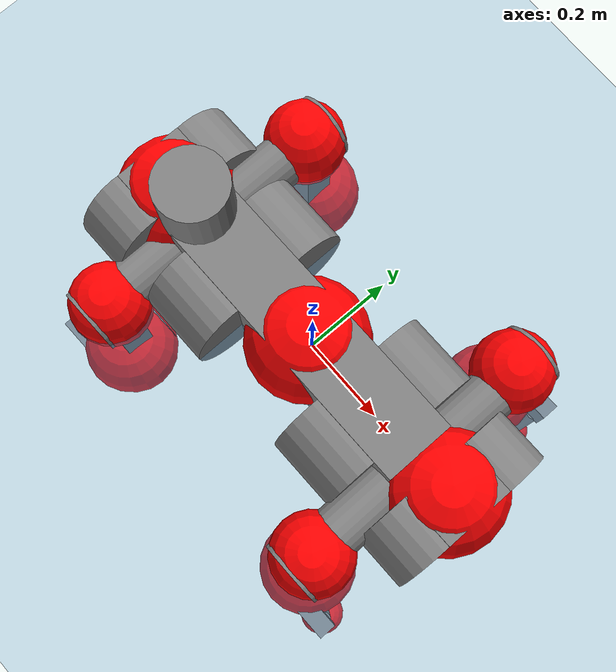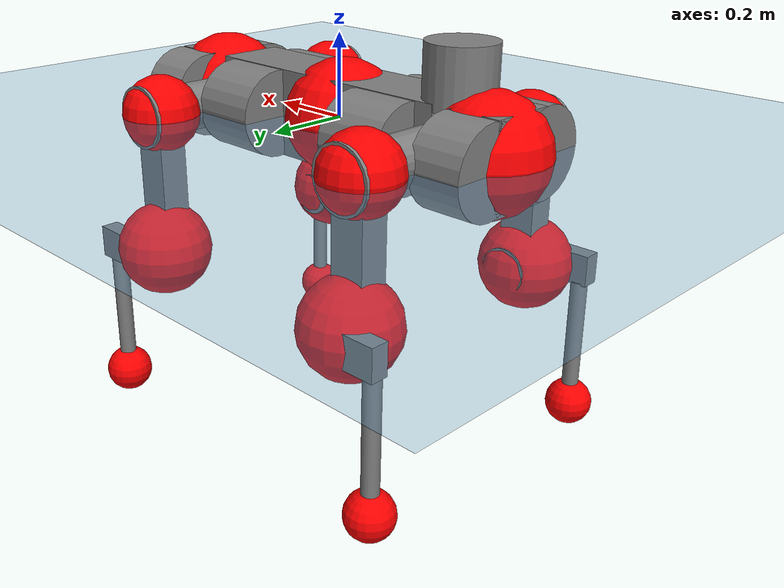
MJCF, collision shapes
<mujoco model="anymal_c">
  <compiler angle="radian" assetdir="assets" balanceinertia="true" inertiafromgeom="false"/>

  <option timestep="0.005" density="1.2" viscosity="2e-05"/>

  <size nkey="1"/>

  <visual>
    <quality shadowsize="8192"/>
    <map shadowclip="0.5"/>
  </visual>

  <default>
    <default class="/">
      <material specular="0" shininess="0.25"/>
      <geom contype="0" conaffinity="0" group="1" solref="-1000 -80"/>
      <site size="0.01 0.005 0.005" group="5"/>
      <general forcelimited="true" forcerange="-80 80" biastype="affine" gainprm="80" biasprm="0 -80 -2"/>
      <default class="anymal_c">
        <joint armature="0.01" damping="0.01" frictionloss="0.1"/>
        <default class="visual">
          <geom type="mesh" group="2"/>
          <default class="visual_zflip"/>
        </default>
        <default class="collision">
          <geom type="cylinder" group="3"/>
          <default class="foot">
            <geom size="0.03 0 0" type="sphere" condim="6" priority="1" friction="0.8 0.02 0.01" solimp="0.015 1 0.03"/>
          </default>
        </default>
      </default>
      <default class="reward_collision_sphere">
        <geom group="5" rgba="1 0 0 1"/>
      </default>
    </default>
  </default>

  <asset>
    <texture type="skybox" colorspace="auto" name="//unnamed_texture_0" builtin="gradient" rgb1="0.95 0.95 0.95" rgb2="0.95 0.95 0.95" width="100" height="600"/>
    <texture type="2d" colorspace="auto" name="texplane" builtin="checker" rgb1="0.345 0.575 0.748" rgb2="0.345 0.575 0.748" markrgb="1 1 1" width="512" height="512"/>
    <texture type="2d" colorspace="linear" name="base" file="base.png"/>
    <texture type="2d" colorspace="linear" name="top_shell" file="top_shell.png"/>
    <texture type="2d" colorspace="linear" name="bottom_shell" file="bottom_shell.png"/>
    <texture type="2d" colorspace="linear" name="remote" file="remote.png"/>
    <texture type="2d" colorspace="linear" name="hatch" file="hatch.png"/>
    <texture type="2d" colorspace="linear" name="handle" file="handle.png"/>
    <texture type="2d" colorspace="linear" name="face" file="face.png"/>
    <texture type="2d" colorspace="linear" name="battery" file="battery.png"/>
    <texture type="2d" colorspace="linear" name="lidar_cage" file="lidar_cage.png"/>
    <texture type="2d" colorspace="linear" name="depth_camera" file="depth_camera.png"/>
    <texture type="2d" colorspace="linear" name="wide_angle_camera" file="wide_angle_camera.png"/>
    <texture type="2d" colorspace="linear" name="lidar" file="lidar.png"/>
    <texture type="2d" colorspace="linear" name="drive" file="drive.png"/>
    <texture type="2d" colorspace="linear" name="hip_l" file="hip_l.png"/>
    <texture type="2d" colorspace="linear" name="shank_l" file="shank_l.png"/>
    <texture type="2d" colorspace="linear" name="foot" file="foot.png"/>
    <texture type="2d" colorspace="linear" name="thigh" file="thigh.png"/>
    <texture type="2d" colorspace="linear" name="shank_r" file="shank_r.png"/>
    <texture type="2d" colorspace="linear" name="hip_r" file="hip_r.png"/>
    <material name="MatPlane" class="/" texture="texplane" texuniform="true" texrepeat="2 2" specular="0.9" shininess="0.5"/>
    <material name="black_plastic" class="/" rgba="0.007 0.007 0.007 1"/>
    <material name="green" class="/" rgba="0.052 0.178 0.033 1"/>
    <material name="red" class="/" rgba="0.178 0.006 0.005 1"/>
    <material name="yellow" class="/" rgba="0.178 0.119 0.006 1"/>
    <material name="lwl" class="/" rgba="0.8 0.8 0.8 1"/>
    <material name="base" class="/" texture="base"/>
    <material name="top_shell" class="/" texture="top_shell"/>
    <material name="bottom_shell" class="/" texture="bottom_shell"/>
    <material name="hip_l" class="/" texture="hip_l"/>
    <material name="thigh" class="/" texture="thigh"/>
    <material name="shank_l" class="/" texture="shank_l"/>
    <material name="foot" class="/" texture="foot"/>
    <material name="hip_r" class="/" texture="hip_r"/>
    <material name="shank" class="/" texture="shank_r"/>
    <material name="hatch" class="/" texture="hatch"/>
    <material name="remote" class="/" texture="remote"/>
    <material name="handle" class="/" texture="handle"/>
    <material name="face" class="/" texture="face"/>
    <material name="depth_camera" class="/" texture="depth_camera"/>
    <material name="wide_angle_camera" class="/" texture="wide_angle_camera"/>
    <material name="battery" class="/" texture="battery"/>
    <material name="lidar_cage" class="/" texture="lidar_cage"/>
    <material name="lidar" class="/" texture="lidar"/>
    <material name="drive" class="/" texture="drive"/>
    <mesh name="base_0" class="/" file="base_0.obj"/>
    <mesh name="base_1" class="/" file="base_1.obj"/>
    <mesh name="base_2" class="/" file="base_2.obj"/>
    <mesh name="base_3" class="/" file="base_3.obj"/>
    <mesh name="base_4" class="/" file="base_4.obj"/>
    <mesh name="base_5" class="/" file="base_5.obj"/>
    <mesh name="top_shell" class="/" file="top_shell.obj"/>
    <mesh name="bottom_shell" class="/" file="bottom_shell.obj"/>
    <mesh name="remote" class="/" file="remote.obj"/>
    <mesh name="handle" class="/" file="handle.obj"/>
    <mesh name="face" class="/" file="face.obj"/>
    <mesh name="wide_angle_camera" class="/" file="wide_angle_camera.obj"/>
    <mesh name="depth_camera" class="/" file="depth_camera.obj"/>
    <mesh name="battery" class="/" file="battery.obj"/>
    <mesh name="lidar_cage" class="/" file="lidar_cage.obj"/>
    <mesh name="lidar" class="/" file="lidar.obj"/>
    <mesh name="drive" class="/" file="drive.obj"/>
    <mesh name="hip_l" class="/" file="hip_l.obj"/>
    <mesh name="thigh" class="/" file="thigh.obj"/>
    <mesh name="shank_l" class="/" file="shank_l.obj"/>
    <mesh name="foot" class="/" file="foot.obj"/>
    <mesh name="hip_r" class="/" file="hip_r.obj"/>
    <mesh name="hatch" class="/" file="hatch.obj"/>
    <mesh name="shank_r" class="/" file="shank_r.obj"/>
  </asset>

  <worldbody>
    <geom name="floor" class="/" size="100 100 0.125" type="plane" group="0" material="MatPlane"/>
    <light name="toplight_shadow" class="/" pos="0 0 5" dir="0.0990148 0.0990148 -0.990148" type="directional" ambient="0.04 0.04 0.04" diffuse="0.55 0.55 0.55" specular="0.12 0.12 0.12"/>
    <light name="toplight_fill" class="/" pos="0 0 5" dir="0.0990148 0.0990148 -0.990148" type="directional" castshadow="false" ambient="0.04 0.04 0.04" diffuse="0.3 0.3 0.3" specular="0.08 0.08 0.08"/>
    <body name="trunk" childclass="anymal_c" pos="-0.0125145 -0.00101031 0.00490102" quat="0.999985 0.000265449 -0.00317118 0.00452679">
      <inertial pos="0.014154 -0.00462472 0.0588913" quat="0.49887 0.503025 0.500015 0.498076" mass="32.807" diaginertia="0.454624 2.74606 0.432234"/>
      <joint name="//unnamed_joint_0" type="free" armature="0" damping="0" frictionloss="0"/>
      <geom name="//unnamed_geom_1" class="visual" material="green" mesh="base_0"/>
      <geom name="//unnamed_geom_2" class="visual" material="yellow" mesh="base_1"/>
      <geom name="//unnamed_geom_3" class="visual" material="red" mesh="base_2"/>
      <geom name="//unnamed_geom_4" class="visual" material="black_plastic" mesh="base_3"/>
      <geom name="//unnamed_geom_5" class="visual" material="lwl" mesh="base_4"/>
      <geom name="//unnamed_geom_6" class="visual" material="base" mesh="base_5"/>
      <geom name="trunk_1" class="collision" size="0.335894 0.081078 0.104243" type="box"/>
      <geom name="trunk_2" class="collision" size="0.104243 0.0839736" pos="0.205224 0.0952912 0" quat="0.707107 0 0.707107 0"/>
      <geom name="trunk_3" class="collision" size="0.104243 0.0839736" pos="-0.205224 0.0952912 0" quat="0.707107 0 0.707107 0"/>
      <geom name="trunk_4" class="collision" size="0.104243 0.0839736" pos="0.205224 -0.0952912 0" quat="0.707107 0 0.707107 0"/>
      <geom name="trunk_5" class="collision" size="0.104243 0.0839736" pos="-0.205224 -0.0952912 0" quat="0.707107 0 0.707107 0"/>
      <geom name="//unnamed_geom_12" class="visual" material="top_shell" mesh="top_shell"/>
      <geom name="//unnamed_geom_13" class="visual" material="bottom_shell" mesh="bottom_shell"/>
      <geom name="//unnamed_geom_14" class="visual" material="remote" mesh="remote"/>
      <geom name="//unnamed_geom_15" class="visual" material="handle" mesh="handle"/>
      <geom name="//unnamed_geom_16" class="visual" pos="0.391105 0 0" quat="1 0 0 0" material="face" mesh="face"/>
      <geom name="trunk_6" class="collision" size="0.0637041 0.081078 0.104243" pos="0.443001 0 0" type="box"/>
      <geom name="//unnamed_geom_18" class="collision" size="0.104243 0.0637041" pos="0.443001 0.0952912 0" quat="0.707107 0 0.707107 0"/>
      <geom name="//unnamed_geom_19" class="collision" size="0.104243 0.0637041" pos="0.443001 -0.0952912 0" quat="0.707107 0 0.707107 0"/>
      <geom name="//unnamed_geom_20" class="visual" pos="0.435604 0 -0.0358815" quat="0.965926 0 0.258819 0" material="depth_camera" mesh="depth_camera"/>
      <geom name="//unnamed_geom_21" class="visual" pos="0.484046 0 0.0175135" material="wide_angle_camera" mesh="wide_angle_camera"/>
      <geom name="//unnamed_geom_22" class="visual_zflip" pos="-0.391105 0 0" quat="0 0 0 1" material="face" mesh="face"/>
      <geom name="trunk_7" class="collision" size="0.0637041 0.081078 0.104243" pos="-0.443001 0 0" quat="0 0 0 1" type="box"/>
      <geom name="//unnamed_geom_24" class="collision" size="0.104243 0.0637041" pos="-0.443001 -0.0952912 0" quat="0 -0.707107 0 0.707107"/>
      <geom name="//unnamed_geom_25" class="collision" size="0.104243 0.0637041" pos="-0.443001 0.0952912 0" quat="0 -0.707107 0 0.707107"/>
      <geom name="//unnamed_geom_26" class="visual" pos="-0.435604 0 -0.0358815" quat="0 -0.258819 0 0.965926" material="depth_camera" mesh="depth_camera"/>
      <geom name="//unnamed_geom_27" class="visual_zflip" pos="-0.484046 0 0.0175135" quat="0 0 0 1" material="wide_angle_camera" mesh="wide_angle_camera"/>
      <geom name="//unnamed_geom_28" class="visual" material="battery" mesh="battery"/>
      <geom name="//unnamed_geom_29" class="visual" pos="0 0.109576 0.0322656" quat="0.683013 -0.183013 0.183013 0.683013" material="depth_camera" mesh="depth_camera"/>
      <geom name="//unnamed_geom_30" class="visual" pos="0 -0.109576 0.0322656" quat="0.683013 0.183013 0.183013 -0.683013" material="depth_camera" mesh="depth_camera"/>
      <geom name="//unnamed_geom_31" class="visual" pos="-0.343456 0 0.0859882" quat="1 0 0 0" material="lidar_cage" mesh="lidar_cage"/>
      <geom name="trunk_8" class="collision" size="0.081078 0.0694954" pos="-0.343456 0 0.156183"/>
      <geom name="//unnamed_geom_33" class="visual" pos="-0.343456 0.00016412 0.166361" quat="0.707107 0 0 -0.707107" material="lidar" mesh="lidar"/>
      <geom name="//unnamed_geom_34" class="visual" pos="0.282974 0.141507 3.30159e-09" quat="0.258819 0.965926 0 0" material="drive" mesh="drive"/>
      <geom name="//unnamed_geom_35" class="visual" pos="0.282974 -0.141507 -3.30159e-09" quat="0.258819 -0.965926 0 0" material="drive" mesh="drive"/>
      <geom name="//unnamed_geom_36" class="visual" pos="-0.282974 0.141507 -3.30159e-09" quat="0 0 0.965926 -0.258819" material="drive" mesh="drive"/>
      <geom name="//unnamed_geom_37" class="visual" pos="-0.282974 -0.141507 3.30159e-09" quat="0 0 -0.965926 -0.258819" material="drive" mesh="drive"/>
      <geom name="//unnamed_geom_38" class="visual" pos="0.109453 0 0.0854032" quat="1 0 0 0" material="hatch" mesh="hatch"/>
      <geom name="//unnamed_geom_39" class="reward_collision_sphere" size="0.138991"/>
      <geom name="//unnamed_geom_40" class="reward_collision_sphere" size="0.138991" pos="0.424602 0 0"/>
      <geom name="//unnamed_geom_41" class="reward_collision_sphere" size="0.138991" pos="-0.424602 0 0"/>
      <site name="imu" pos="0.23062 -0.0176536 0.00102409" size="0.0115826"/>
      <camera name="track" pos="0 -2.72261 0" quat="0.707107 0.707107 0 0" mode="trackcom"/>
      <camera name="ego_camera" pos="0.424602 0 -0.0467963" quat="-0.5 -0.5 0.5 0.5"/>
      <body name="LF_HIP" pos="0.283785 0.144021 -0.00419213" quat="0.257916 0.966165 0.00158593 -0.00145536">
        <inertial pos="0.0521631 -0.0127212 -0.00968339" quat="-0.126422 0.711423 -0.134258 0.678137" mass="4.50811" diaginertia="0.00362795 0.0210616 0.00718453"/>
        <joint name="LF_HAA" pos="0 0 0" axis="0.99812 0.0601423 -0.0117947" stiffness="0.0170454" range="-0.960329 0.482107" armature="0.0124803" damping="0" frictionloss="0.120754"/>
        <geom name="//unnamed_geom_42" class="visual" pos="0 0.000194218 -3.19001e-05" quat="0.258819 -0.965926 0 0" material="hip_l" mesh="hip_l"/>
        <geom name="//unnamed_geom_43" class="visual" pos="0.0565192 -0.0739173 -0.0412605" quat="0.183013 -0.683013 0.683013 0.183013" material="drive" mesh="drive"/>
        <geom name="//unnamed_geom_44" class="collision" size="0.0579128 0.081078" pos="0.0565192 -0.0162809 -0.00807821" quat="-0.353553 -0.612372 0.612372 -0.353553"/>
        <body name="LF_THIGH" pos="0.0513064 -0.0988706 -0.0550004" quat="0.179273 -0.685374 0.682127 0.181184">
          <inertial pos="0.0212218 0.00701308 -0.276553" quat="0.993322 -0.00604459 -0.080665 0.0822709" mass="5.17419" diaginertia="0.0233016 0.155675 0.00846336"/>
          <joint name="LF_HFE" pos="0 0 0" axis="0.99988 0.0149349 -0.0039924" stiffness="0.0635435" range="-3.23269 3.1308" armature="0.0141588" damping="0.0180901" frictionloss="0.134648"/>
          <geom name="//unnamed_geom_45" class="visual" pos="-0.00831144 -1.30969e-05 0" quat="0.707107 0 0 -0.707107" material="thigh" mesh="thigh"/>
          <geom name="//unnamed_geom_46" class="collision" size="0.0752867 0.0463303" pos="0.0377424 0 0" quat="0.5 0.5 -0.5 -0.5"/>
          <geom name="//unnamed_geom_47" class="collision" size="0.0434346 0.0347477 0.163678" pos="0.0283068 0 -0.165324" quat="0.707107 0 0 -0.707107" type="box"/>
          <geom name="//unnamed_geom_48" class="visual" pos="0.094639 0 -0.333424" quat="1 0 0 0" material="drive" mesh="drive"/>
          <geom name="//unnamed_geom_49" class="collision" size="0.0579128 0.081078" pos="0.0285899 0 -0.333424" quat="0.707107 0 0.707107 0"/>
          <geom name="//unnamed_geom_50" class="reward_collision_sphere" size="0.0926605" pos="0.023589 0 0"/>
          <body name="LF_SHANK" pos="0.0951011 0.0110054 -0.336399" quat="0.999994 -0.00298468 -0.00109211 0.00112051">
            <inertial pos="0.0144213 -0.0847849 -0.101678" quat="0.993039 -0.109567 -0.0058527 -0.0428192" mass="0.888447" diaginertia="0.0068847 0.0330858 0.00199235"/>
            <joint name="LF_KFE" pos="0 0 0" axis="0.999871 0.0140565 -0.00774911" range="-2.92218 3.16396" armature="0.00872298" damping="0.0558569" frictionloss="0.0837291"/>
            <geom name="//unnamed_geom_51" class="visual" pos="-0.00271018 -0.0144508 0" quat="0.707107 0 0 -0.707107" material="shank_l" mesh="shank_l"/>
            <geom name="LF_kfe_act" class="collision" size="0.0694954 0.0231651" pos="0.0188712 0 0" quat="0.5 0.5 -0.5 -0.5"/>
            <geom name="//unnamed_geom_53" class="collision" size="0.0665986 0.0390912 0.0220069" pos="0.0188712 -0.0782735 0" quat="0.5 0.5 -0.5 -0.5" type="box"/>
            <geom name="//unnamed_geom_54" class="visual" pos="0.0123141 -0.124383 -0.395394" quat="0.382683 0 0 -0.92388" material="foot" mesh="foot"/>
            <geom name="LF_calf" class="collision" size="0.0202695 0.163606" pos="0.0123135 -0.119727 -0.197697" quat="0.707107 0 0 -0.707107"/>
            <geom name="LF_foot" class="foot" size="0.022286" pos="0.0123135 -0.119727 -0.369071" quat="0.707107 0 0 -0.707107"/>
            <geom name="//unnamed_geom_57" class="reward_collision_sphere" size="0.115826" pos="-0.047178 0 0"/>
            <geom name="//unnamed_geom_58" class="reward_collision_sphere" size="0.0579128" pos="0.0123135 -0.119727 -0.369071"/>
            <site name="LF_foot" class="foot" pos="0.0123135 -0.119727 -0.369071" quat="0.707107 0 0 -0.707107" size="0.0115826"/>
          </body>
        </body>
      </body>
      <body name="RF_HIP" pos="0.283166 -0.144251 0.0111567" quat="0.259077 -0.965847 -0.00338588 -0.00266017">
        <inertial pos="0.0480971 0.0310468 -0.0107978" quat="0.176879 0.658912 0.133042 0.718922" mass="4.3798" diaginertia="0.00520184 0.024695 0.00843367"/>
        <joint name="RF_HAA" pos="0 0 0" axis="0.999598 0.00739883 0.0273801" stiffness="0.00758135" range="-0.552721 0.724732" armature="0.0102851" damping="0.0140437" frictionloss="0.171911"/>
        <geom name="//unnamed_geom_59" class="visual" pos="0 -0.000194216 -3.19e-05" quat="0.258819 0.965926 0 0" material="hip_r" mesh="hip_r"/>
        <geom name="//unnamed_geom_60" class="visual" pos="0.0565192 0.0739173 -0.0412605" quat="0.183013 0.683013 0.683013 -0.183013" material="drive" mesh="drive"/>
        <geom name="//unnamed_geom_61" class="collision" size="0.0579128 0.081078" pos="0.0565192 0.0162809 -0.00807821" quat="-0.353553 0.612372 0.612372 0.353553"/>
        <body name="RF_THIGH" pos="0.0579839 0.111149 -0.0495828" quat="0.182736 0.682899 0.682977 -0.183843">
          <inertial pos="0.0231469 0.0085412 -0.288039" quat="0.991643 0.0295303 -0.0881064 0.0894903" mass="4.64659" diaginertia="0.0238461 0.154009 0.00859894"/>
          <joint name="RF_HFE" pos="0 0 0" axis="0.999979 0.00559666 -0.00314745" stiffness="0.0305036" range="-3.14421 2.95873" armature="0.0117688" damping="0.0163466" frictionloss="0.0897525"/>
          <geom name="//unnamed_geom_62" class="visual" pos="-0.00831144 -1.30969e-05 0" quat="0.707107 0 0 -0.707107" material="thigh" mesh="thigh"/>
          <geom name="//unnamed_geom_63" class="collision" size="0.0752867 0.0463303" pos="0.0377424 0 0" quat="0.5 0.5 0.5 0.5"/>
          <geom name="//unnamed_geom_64" class="collision" size="0.0434346 0.0347477 0.163678" pos="0.0283068 0 -0.165324" quat="0.707107 0 0 0.707107" type="box"/>
          <geom name="//unnamed_geom_65" class="visual" pos="0.094639 0 -0.333424" quat="1 0 0 0" material="drive" mesh="drive"/>
          <geom name="//unnamed_geom_66" class="collision" size="0.0579128 0.081078" pos="0.0285899 0 -0.333424" quat="0.707107 0 0.707107 0"/>
          <geom name="//unnamed_geom_67" class="reward_collision_sphere" size="0.0926605" pos="0.023589 0 0"/>
          <body name="RF_SHANK" pos="0.0959141 0.0089902 -0.330529" quat="1 4.4117e-05 4.30407e-05 -2.73689e-07">
            <inertial pos="0.00393089 0.0845226 -0.0926973" quat="0.986057 0.157801 0.0165017 0.0501743" mass="0.896017" diaginertia="0.00755458 0.0429705 0.00268977"/>
            <joint name="RF_KFE" pos="0 0 0" axis="0.998345 -0.0538971 0.0200832" stiffness="0.0490383" range="-3.10805 2.98446" armature="0.0133881" damping="0" frictionloss="0.138826"/>
            <geom name="//unnamed_geom_68" class="visual" pos="-0.00271017 0.0144508 0" quat="0.707107 0 0 0.707107" material="shank" mesh="shank_r"/>
            <geom name="RF_kfe_act" class="collision" size="0.0694954 0.0231651" pos="0.0188712 0 0" quat="0.5 0.5 0.5 0.5"/>
            <geom name="//unnamed_geom_70" class="collision" size="0.0665986 0.0390912 0.0220069" pos="0.0188712 0.0782735 0" quat="0.5 0.5 0.5 0.5" type="box"/>
            <geom name="//unnamed_geom_71" class="visual" pos="0.0123128 0.124383 -0.395394" quat="0.382683 0 0 0.92388" material="foot" mesh="foot"/>
            <geom name="RF_calf" class="collision" size="0.0202695 0.163606" pos="0.0123135 0.119727 -0.197697" quat="0.707107 0 0 0.707107"/>
            <geom name="RF_foot" class="foot" size="0.0376575" pos="0.0123135 0.119727 -0.369071" quat="0.707107 0 0 0.707107"/>
            <geom name="//unnamed_geom_74" class="reward_collision_sphere" size="0.115826" pos="-0.047178 0 0"/>
            <geom name="//unnamed_geom_75" class="reward_collision_sphere" size="0.0579128" pos="0.0123135 0.119727 -0.369071"/>
            <site name="RF_foot" class="foot" pos="0.0123135 0.119727 -0.369071" quat="0.707107 0 0 0.707107" size="0.0115826"/>
          </body>
        </body>
      </body>
      <body name="LH_HIP" pos="-0.28384 0.142935 0.00821963" quat="-0.000110059 0.000731509 0.965979 -0.25862">
        <inertial pos="0.0499226 0.00924279 -0.00153828" quat="0.121877 0.705087 0.174433 0.67644" mass="3.65157" diaginertia="0.00435353 0.0222019 0.00614793"/>
        <joint name="LH_HAA" pos="0 0 0" axis="0.999981 -0.00587521 -0.00164752" range="-0.490516 0.847551" armature="0.0164914" damping="0.0177732" frictionloss="0.0556208"/>
        <geom name="//unnamed_geom_76" class="visual" pos="0 -0.000194216 -3.19e-05" quat="-0.258819 -0.965926 0 0" material="hip_r" mesh="hip_r"/>
        <geom name="//unnamed_geom_77" class="visual" pos="0.0565192 0.0739173 -0.0412605" quat="0.183013 0.683013 0.683013 -0.183013" material="drive" mesh="drive"/>
        <geom name="//unnamed_geom_78" class="collision" size="0.0579128 0.081078" pos="0.0565192 0.0162809 -0.00807821" quat="-0.353553 0.612372 0.612372 0.353553"/>
        <body name="LH_THIGH" pos="0.0573509 0.108838 -0.0593547" quat="0.18303 0.683033 0.683015 -0.182913">
          <inertial pos="0.0290164 -0.000687908 -0.287986" quat="0.993199 -0.0123397 -0.0667598 0.0945818" mass="3.96635" diaginertia="0.0223926 0.135096 0.00812837"/>
          <joint name="LH_HFE" pos="0 0 0" axis="0.999468 0.0184456 0.0268811" range="-3.11832 3.16037" armature="0.0070746" damping="0.0382492" frictionloss="0.113189"/>
          <geom name="//unnamed_geom_79" class="visual" pos="-0.00831144 -1.30969e-05 0" quat="0.707107 0 0 -0.707107" material="thigh" mesh="thigh"/>
          <geom name="//unnamed_geom_80" class="collision" size="0.0752867 0.0463303" pos="0.0377424 0 0" quat="0.5 0.5 -0.5 -0.5"/>
          <geom name="//unnamed_geom_81" class="collision" size="0.0434346 0.0347477 0.163678" pos="0.0283068 0 -0.165324" quat="0.707107 0 0 -0.707107" type="box"/>
          <geom name="//unnamed_geom_82" class="visual" pos="0.094639 0 -0.333424" quat="1 0 0 0" material="drive" mesh="drive"/>
          <geom name="//unnamed_geom_83" class="collision" size="0.0579128 0.081078" pos="0.0285899 0 -0.333424" quat="0.707107 0 0.707107 0"/>
          <geom name="//unnamed_geom_84" class="reward_collision_sphere" size="0.0926605" pos="0.023589 0 0"/>
          <body name="LH_SHANK" pos="0.0960932 0.000278008 -0.322327" quat="1 -0.000102025 -0.000202766 -0.000554132">
            <inertial pos="0.00843861 0.0712998 -0.09337" quat="0.995038 0.0933586 0.0141809 0.0313486" mass="0.88166" diaginertia="0.00784311 0.0421665 0.00272041"/>
            <joint name="LH_KFE" pos="0 0 0" axis="0.999995 0.00306289 0.000687181" stiffness="0.0624831" range="-3.159 3.04826" armature="0.00840798" damping="0.0407216" frictionloss="0.0475555"/>
            <geom name="//unnamed_geom_85" class="visual" pos="-0.00271017 0.0144508 0" quat="-0.707107 0 0 -0.707107" material="shank" mesh="shank_r"/>
            <geom name="LH_kfe_act" class="collision" size="0.0694954 0.0231651" pos="0.0188712 0 0" quat="0.5 0.5 -0.5 -0.5"/>
            <geom name="//unnamed_geom_87" class="collision" size="0.0665986 0.0390912 0.0220069" pos="0.0188712 0.0782735 0" quat="0.5 0.5 -0.5 -0.5" type="box"/>
            <geom name="//unnamed_geom_88" class="visual" pos="0.0123128 0.124383 -0.395394" quat="-0.382683 0 0 -0.92388" material="foot" mesh="foot"/>
            <geom name="LH_calf" class="collision" size="0.0202695 0.163606" pos="0.0123135 0.119727 -0.197697" quat="0.707107 0 0 -0.707107"/>
            <geom name="LH_foot" class="foot" size="0.0415866" pos="0.0123135 0.119727 -0.369071" quat="0.707107 0 0 -0.707107"/>
            <geom name="//unnamed_geom_91" class="reward_collision_sphere" size="0.115826" pos="-0.047178 0 0"/>
            <geom name="//unnamed_geom_92" class="reward_collision_sphere" size="0.0579128" pos="0.0123135 0.119727 -0.369071"/>
            <site name="LH_foot" class="foot" pos="0.0123135 0.119727 -0.369071" quat="0.707107 0 0 -0.707107" size="0.0115826"/>
          </body>
        </body>
      </body>
      <body name="RH_HIP" pos="-0.286185 -0.136078 0.00162104" quat="0.00411294 0.00278446 -0.96667 -0.255976">
        <inertial pos="0.0415868 -0.0290307 0.00206168" quat="-0.164853 0.703057 -0.142697 0.676884" mass="4.35782" diaginertia="0.00433978 0.0228161 0.00722393"/>
        <joint name="RH_HAA" pos="0 0 0" axis="0.998129 0.0544429 0.0278405" range="-0.786946 0.485185" armature="0.0146737" damping="0.014406" frictionloss="0.110909"/>
        <geom name="//unnamed_geom_93" class="visual" pos="0 0.000194218 -3.19001e-05" quat="-0.258819 0.965926 0 0" material="hip_l" mesh="hip_l"/>
        <geom name="//unnamed_geom_94" class="visual" pos="0.0565192 -0.0739173 -0.0412605" quat="-0.183013 0.683013 -0.683013 -0.183013" material="drive" mesh="drive"/>
        <geom name="//unnamed_geom_95" class="collision" size="0.0579128 0.081078" pos="0.0565192 -0.0162809 -0.00807821" quat="0.353553 0.612372 -0.612372 0.353553"/>
        <body name="RH_THIGH" pos="0.0585089 -0.0974687 -0.0371179" quat="-0.183166 0.683178 -0.682601 -0.183773">
          <inertial pos="0.0290125 0.0011531 -0.286909" quat="0.993474 0.00172042 -0.0768339 0.0842835" mass="5.3434" diaginertia="0.0227125 0.127041 0.00927881"/>
          <joint name="RH_HFE" pos="0 0 0" axis="0.999989 -0.00333637 -0.00344408" range="-3.13874 2.94333" armature="0.011305" damping="0.0145584" frictionloss="0.110582"/>
          <geom name="//unnamed_geom_96" class="visual" pos="-0.00831144 -1.30969e-05 0" quat="0.707107 0 0 -0.707107" material="thigh" mesh="thigh"/>
          <geom name="//unnamed_geom_97" class="collision" size="0.0752867 0.0463303" pos="0.0377424 0 0" quat="0.5 0.5 0.5 0.5"/>
          <geom name="//unnamed_geom_98" class="collision" size="0.0434346 0.0347477 0.163678" pos="0.0283068 0 -0.165324" quat="0.707107 0 0 0.707107" type="box"/>
          <geom name="//unnamed_geom_99" class="visual" pos="0.094639 0 -0.333424" quat="1 0 0 0" material="drive" mesh="drive"/>
          <geom name="//unnamed_geom_100" class="collision" size="0.0579128 0.081078" pos="0.0285899 0 -0.333424" quat="0.707107 0 0.707107 0"/>
          <geom name="//unnamed_geom_101" class="reward_collision_sphere" size="0.0926605" pos="0.023589 0 0"/>
          <body name="RH_SHANK" pos="0.0937066 0.00232031 -0.338357" quat="1 -9.79101e-05 0.000306952 -5.87983e-05">
            <inertial pos="0.0131928 -0.0831031 -0.0962153" quat="0.994974 -0.0998772 0.00662459 -0.00280452" mass="0.892863" diaginertia="0.00717469 0.043549 0.00214526"/>
            <joint name="RH_KFE" pos="0 0 0" axis="0.998603 -0.0494366 0.0186703" range="-3.07089 3.10637" armature="0.0128717" damping="0" frictionloss="0.127878"/>
            <geom name="//unnamed_geom_102" class="visual" pos="-0.00271018 -0.0144508 0" quat="0.707107 0 0 -0.707107" material="shank_l" mesh="shank_l"/>
            <geom name="RH_kfe_act" class="collision" size="0.0694954 0.0231651" pos="0.0188712 0 0" quat="0.5 0.5 0.5 0.5"/>
            <geom name="//unnamed_geom_104" class="collision" size="0.0665986 0.0390912 0.0220069" pos="0.0188712 -0.0782735 0" quat="0.5 0.5 0.5 0.5" type="box"/>
            <geom name="//unnamed_geom_105" class="visual" pos="0.0123141 -0.124383 -0.395394" quat="0.382683 0 0 -0.92388" material="foot" mesh="foot"/>
            <geom name="RH_calf" class="collision" size="0.0202695 0.163606" pos="0.0123135 -0.119727 -0.197697" quat="0.707107 0 0 0.707107"/>
            <geom name="RH_foot" class="foot" size="0.0474211" pos="0.0123135 -0.119727 -0.369071" quat="0.707107 0 0 0.707107"/>
            <geom name="//unnamed_geom_108" class="reward_collision_sphere" size="0.115826" pos="-0.047178 0 0"/>
            <geom name="//unnamed_geom_109" class="reward_collision_sphere" size="0.0579128" pos="0.0123135 -0.119727 -0.369071"/>
            <site name="RH_foot" class="foot" pos="0.0123135 -0.119727 -0.369071" quat="0.707107 0 0 0.707107" size="0.0115826"/>
          </body>
        </body>
      </body>
    </body>
  </worldbody>

  <contact>
    <pair class="/" geom1="floor" geom2="LF_foot" name="//unnamed_contact_0"/>
    <pair class="/" geom1="floor" geom2="RF_foot" name="//unnamed_contact_1"/>
    <pair class="/" geom1="floor" geom2="LH_foot" name="//unnamed_contact_2"/>
    <pair class="/" geom1="floor" geom2="RH_foot" name="//unnamed_contact_3"/>
  </contact>

  <actuator>
    <general name="LF_HAA" class="/" joint="LF_HAA" forcerange="-96.9436 96.9436" gainprm="78.692" biasprm="0 -78.692 -2.77731"/>
    <general name="LF_HFE" class="/" joint="LF_HFE" forcerange="-112.237 112.237" gainprm="78.692" biasprm="0 -78.692 -2.77731"/>
    <general name="LF_KFE" class="/" joint="LF_KFE" forcerange="-92.5347 92.5347" gainprm="78.692" biasprm="0 -78.692 -2.77731"/>
    <general name="RF_HAA" class="/" joint="RF_HAA" forcerange="-89.866 89.866" gainprm="78.692" biasprm="0 -78.692 -2.77731"/>
    <general name="RF_HFE" class="/" joint="RF_HFE" forcerange="-73.6797 73.6797" gainprm="78.692" biasprm="0 -78.692 -2.77731"/>
    <general name="RF_KFE" class="/" joint="RF_KFE" forcerange="-90.0314 90.0314" gainprm="78.692" biasprm="0 -78.692 -2.77731"/>
    <general name="LH_HAA" class="/" joint="LH_HAA" forcerange="-52.7211 52.7211" gainprm="78.692" biasprm="0 -78.692 -2.77731"/>
    <general name="LH_HFE" class="/" joint="LH_HFE" forcerange="-110.966 110.966" gainprm="78.692" biasprm="0 -78.692 -2.77731"/>
    <general name="LH_KFE" class="/" joint="LH_KFE" forcerange="-132.633 132.633" gainprm="78.692" biasprm="0 -78.692 -2.77731"/>
    <general name="RH_HAA" class="/" joint="RH_HAA" forcerange="-118.092 118.092" gainprm="78.692" biasprm="0 -78.692 -2.77731"/>
    <general name="RH_HFE" class="/" joint="RH_HFE" forcerange="-54.2731 54.2731" gainprm="78.692" biasprm="0 -78.692 -2.77731"/>
    <general name="RH_KFE" class="/" joint="RH_KFE" forcerange="-92.8717 92.8717" gainprm="78.692" biasprm="0 -78.692 -2.77731"/>
  </actuator>

  <sensor>
    <gyro site="imu" name="imu_angular_velocity"/>
    <velocimeter site="imu" name="imu_linear_velocity"/>
    <framelinvel objtype="site" objname="LF_foot" name="LF_foot_global_linear_velocity"/>
    <framelinvel objtype="site" objname="RF_foot" name="RF_foot_global_linear_velocity"/>
    <framelinvel objtype="site" objname="LH_foot" name="LH_foot_global_linear_velocity"/>
    <framelinvel objtype="site" objname="RH_foot" name="RH_foot_global_linear_velocity"/>
  </sensor>

  <keyframe>
    <key name="home" qpos="0 0 0.55 1 0 0 0 0 0.4 -0.8 0 -0.4 0.8 0 -0.4 0.8 0 0.4 -0.8"/>
  </keyframe>
</mujoco>
